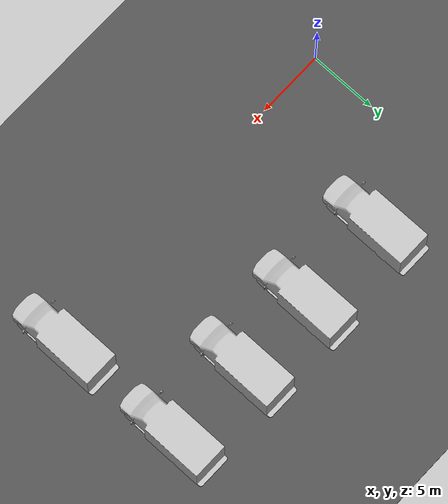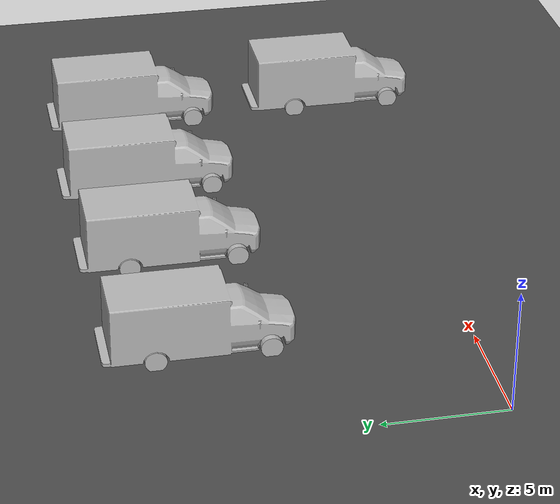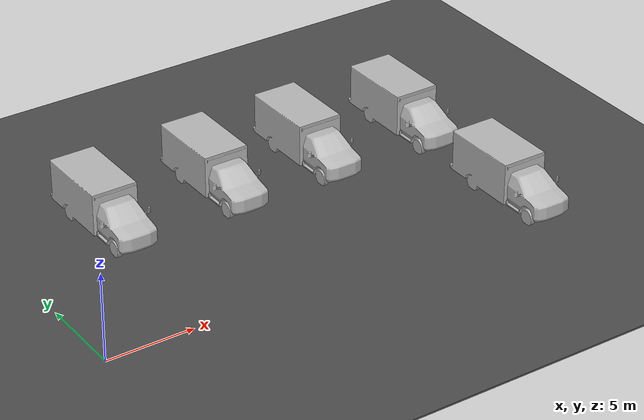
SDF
<sdf version="1.6">
 <world name="default">
  <light name="sun" type="directional">
   <pose>0 0 10 0 -0 0</pose>
   <diffuse>0.8 0.8 0.8 1</diffuse>
   <specular>0.2 0.2 0.2 1</specular>
   <attenuation>
    <range>1000</range>
    <constant>0.9</constant>
    <linear>0.01</linear>
    <quadratic>0.001</quadratic>
   </attenuation>
   <direction>-0.5 0.1 -0.9</direction>
  </light>
  <model name="ground_plane">
   <static>1</static>
   <link name="link">
    <collision name="collision">
     <geometry><plane><normal>0 0 1</normal><size>100 100</size></plane></geometry>
     <surface>
      <contact><collide_bitmask>65535</collide_bitmask></contact>
      <friction><ode><mu>100</mu><mu2>50</mu2></ode></friction>
     </surface>
    </collision>
    <visual name="visual">
     <cast_shadows>0</cast_shadows>
     <geometry><plane><normal>0 0 1</normal><size>100 100</size></plane></geometry>
     <material>
      <script><uri>file://media/materials/scripts/gazebo.material</uri><name>Gazebo/Grey</name></script>
     </material>
    </visual>
   </link>
  </model>
  <model name="asphalt_plane">
   <pose>3.63559 1.08933 0 0 -0 0</pose>
   <static>1</static>
   <link name="link">
    <collision name="collision"><geometry><box><size>200 200 0.1</size></box></geometry></collision>
    <visual name="visual">
     <cast_shadows>0</cast_shadows>
     <geometry><box><size>200 200 0.1</size></box></geometry>
     <material>
      <script>
       <uri>model://asphalt_plane/materials/scripts</uri>
       <uri>model://asphalt_plane/materials/textures</uri>
       <name>vrc/asphalt</name>
      </script>
     </material>
    </visual>
   </link>
  </model>
  <physics name="default_physics" default="0" type="ode">
   <ode>
    <solver>
     <type>quick</type>
     <iters>10</iters>
     <sor>1.3</sor>
     <use_dynamic_moi_rescaling>0</use_dynamic_moi_rescaling>
    </solver>
    <constraints>
     <cfm>0</cfm>
     <erp>0.2</erp>
     <contact_max_correcting_vel>100</contact_max_correcting_vel>
     <contact_surface_layer>0.001</contact_surface_layer>
    </constraints>
   </ode>
   <max_step_size>0.002</max_step_size>
   <real_time_factor>1</real_time_factor>
   <real_time_update_rate>500</real_time_update_rate>
  </physics>
  <gravity>0 0 -9.8066</gravity>
  <magnetic_field>6e-06 2.3e-05 -4.2e-05</magnetic_field>
  <atmosphere type="adiabatic"/>
  <scene><ambient>0.4 0.4 0.4 1</ambient><background>0.7 0.7 0.7 1</background><shadows>1</shadows></scene>
  <audio><device>default</device></audio>
  <spherical_coordinates>
   <surface_model>EARTH_WGS84</surface_model>
   <latitude_deg>0</latitude_deg>
   <longitude_deg>0</longitude_deg>
   <elevation>0</elevation>
   <heading_deg>0</heading_deg>
  </spherical_coordinates>
  <model name="ambulance">
   <static>1</static>
   <link name="link">
    <collision name="collision">
     <geometry>
      <mesh><scale>0.0254 0.0254 0.0254</scale><uri>model://ambulance/meshes/ambulance.obj</uri></mesh>
     </geometry>
    </collision>
    <visual name="visual">
     <geometry>
      <mesh><scale>0.0254 0.0254 0.0254</scale><uri>model://ambulance/meshes/ambulance.obj</uri></mesh>
     </geometry>
    </visual>
   </link>
   <pose>25.723 1.42222 0 0 -0 0</pose>
  </model>
  <model name="ambulance_clone">
   <static>1</static>
   <link name="link">
    <collision name="collision">
     <geometry>
      <mesh><scale>0.0254 0.0254 0.0254</scale><uri>model://ambulance/meshes/ambulance.obj</uri></mesh>
     </geometry>
    </collision>
    <visual name="visual">
     <geometry>
      <mesh><scale>0.0254 0.0254 0.0254</scale><uri>model://ambulance/meshes/ambulance.obj</uri></mesh>
     </geometry>
    </visual>
   </link>
   <pose>25.4058 10.6961 0 0 -0 0</pose>
  </model>
  <model name="ambulance_clone_0">
   <static>1</static>
   <link name="link">
    <collision name="collision">
     <geometry>
      <mesh><scale>0.0254 0.0254 0.0254</scale><uri>model://ambulance/meshes/ambulance.obj</uri></mesh>
     </geometry>
    </collision>
    <visual name="visual">
     <geometry>
      <mesh><scale>0.0254 0.0254 0.0254</scale><uri>model://ambulance/meshes/ambulance.obj</uri></mesh>
     </geometry>
    </visual>
   </link>
   <pose>19.017 10.8953 0 0 -0 0</pose>
  </model>
  <model name="ambulance_clone_1">
   <static>1</static>
   <link name="link">
    <collision name="collision">
     <geometry>
      <mesh><scale>0.0254 0.0254 0.0254</scale><uri>model://ambulance/meshes/ambulance.obj</uri></mesh>
     </geometry>
    </collision>
    <visual name="visual">
     <geometry>
      <mesh><scale>0.0254 0.0254 0.0254</scale><uri>model://ambulance/meshes/ambulance.obj</uri></mesh>
     </geometry>
    </visual>
   </link>
   <pose>12.9604 10.8582 0 0 -0 0</pose>
  </model>
  <model name="ambulance_clone_2">
   <static>1</static>
   <link name="link">
    <collision name="collision">
     <geometry>
      <mesh><scale>0.0254 0.0254 0.0254</scale><uri>model://ambulance/meshes/ambulance.obj</uri></mesh>
     </geometry>
    </collision>
    <visual name="visual">
     <geometry>
      <mesh><scale>0.0254 0.0254 0.0254</scale><uri>model://ambulance/meshes/ambulance.obj</uri></mesh>
     </geometry>
    </visual>
   </link>
   <pose>6.10916 10.8071 0 0 -0 0</pose>
  </model>
 </world>
</sdf>
